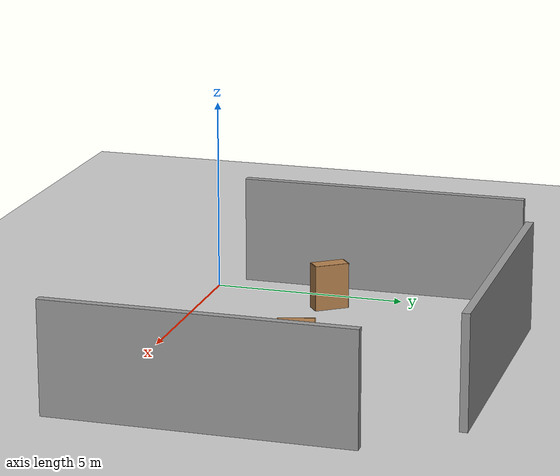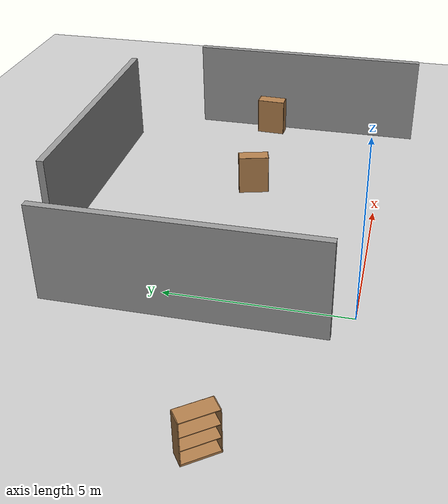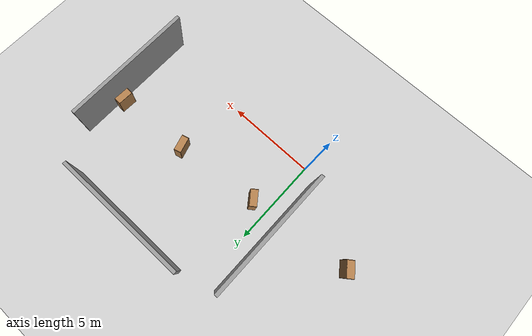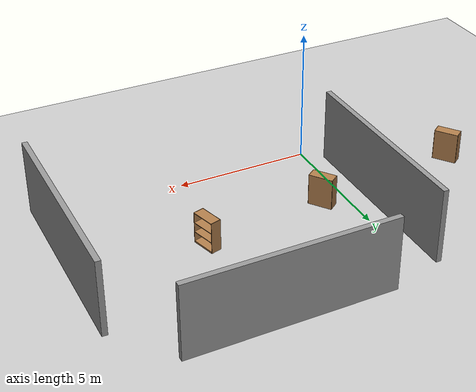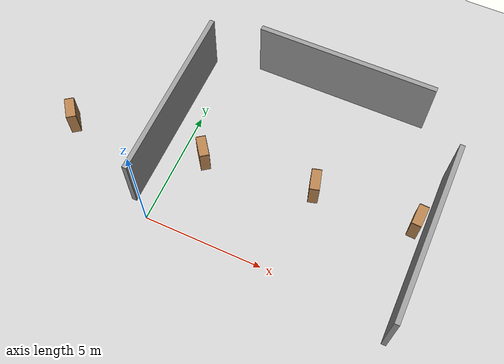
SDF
<sdf version="1.6">
 <world name="default">
  <model name="ground_plane">
   <static>1</static>
   <link name="link">
    <collision name="collision">
     <geometry><plane><normal>0 0 1</normal><size>100 100</size></plane></geometry>
     <surface><friction><ode><mu>100</mu><mu2>50</mu2></ode></friction></surface>
    </collision>
    <visual name="visual">
     <cast_shadows>0</cast_shadows>
     <geometry><plane><normal>0 0 1</normal><size>100 100</size></plane></geometry>
     <material>
      <script><uri>file://media/materials/scripts/gazebo.material</uri><name>Gazebo/Grey</name></script>
     </material>
    </visual>
   </link>
  </model>
  <model name="grey_wall_clone">
   <static>1</static>
   <link name="link">
    <pose>0 0 1.4 0 -0 0</pose>
    <collision name="collision"><geometry><box><size>7.5 0.2 2.8</size></box></geometry></collision>
    <visual name="visual">
     <cast_shadows>0</cast_shadows>
     <geometry><box><size>7.5 0.2 2.8</size></box></geometry>
     <material>
      <script>
       <uri>model://grey_wall/materials/scripts</uri>
       <uri>model://grey_wall/materials/textures</uri>
       <name>vrc/grey_wall</name>
      </script>
     </material>
    </visual>
   </link>
   <pose>-0.806001 4.27388 0 0 -0 1.57079</pose>
  </model>
  <model name="bookshelf">
   <static>1</static>
   <link name="link">
    <inertial><mass>1</mass></inertial>
    <collision name="back">
     <pose>0 0.005 0.6 0 -0 0</pose>
     <geometry><box><size>0.9 0.01 1.2</size></box></geometry>
    </collision>
    <visual name="visual1">
     <pose>0 0.005 0.6 0 -0 0</pose>
     <geometry><box><size>0.9 0.01 1.2</size></box></geometry>
     <material>
      <script><uri>file://media/materials/scripts/gazebo.material</uri><name>Gazebo/Wood</name></script>
     </material>
    </visual>
    <collision name="left_side">
     <pose>0.45 -0.195 0.6 0 -0 0</pose>
     <geometry><box><size>0.02 0.4 1.2</size></box></geometry>
    </collision>
    <visual name="visual2">
     <pose>0.45 -0.195 0.6 0 -0 0</pose>
     <geometry><box><size>0.02 0.4 1.2</size></box></geometry>
     <material>
      <script><uri>file://media/materials/scripts/gazebo.material</uri><name>Gazebo/Wood</name></script>
     </material>
    </visual>
    <collision name="right_side">
     <pose>-0.45 -0.195 0.6 0 -0 0</pose>
     <geometry><box><size>0.02 0.4 1.2</size></box></geometry>
    </collision>
    <visual name="visual3">
     <pose>-0.45 -0.195 0.6 0 -0 0</pose>
     <geometry><box><size>0.02 0.4 1.2</size></box></geometry>
     <material>
      <script><uri>file://media/materials/scripts/gazebo.material</uri><name>Gazebo/Wood</name></script>
     </material>
    </visual>
    <collision name="bottom">
     <pose>0 -0.195 0.03 0 -0 0</pose>
     <geometry><box><size>0.88 0.4 0.06</size></box></geometry>
    </collision>
    <visual name="visual4">
     <pose>0 -0.195 0.03 0 -0 0</pose>
     <geometry><box><size>0.88 0.4 0.06</size></box></geometry>
     <material>
      <script><uri>file://media/materials/scripts/gazebo.material</uri><name>Gazebo/Wood</name></script>
     </material>
    </visual>
    <collision name="top">
     <pose>0 -0.195 1.19 0 -0 0</pose>
     <geometry><box><size>0.88 0.4 0.02</size></box></geometry>
    </collision>
    <visual name="visual5">
     <pose>0 -0.195 1.19 0 -0 0</pose>
     <geometry><box><size>0.88 0.4 0.02</size></box></geometry>
     <material>
      <script><uri>file://media/materials/scripts/gazebo.material</uri><name>Gazebo/Wood</name></script>
     </material>
    </visual>
    <collision name="low_shelf">
     <pose>0 -0.195 0.43 0 -0 0</pose>
     <geometry><box><size>0.88 0.4 0.02</size></box></geometry>
    </collision>
    <visual name="visual6">
     <pose>0 -0.195 0.43 0 -0 0</pose>
     <geometry><box><size>0.88 0.4 0.02</size></box></geometry>
     <material>
      <script><uri>file://media/materials/scripts/gazebo.material</uri><name>Gazebo/Wood</name></script>
     </material>
    </visual>
    <collision name="high_shelf">
     <pose>0 -0.195 0.8 0 -0 0</pose>
     <geometry><box><size>0.88 0.4 0.02</size></box></geometry>
    </collision>
    <visual name="visual7">
     <pose>0 -0.195 0.8 0 -0 0</pose>
     <geometry><box><size>0.88 0.4 0.02</size></box></geometry>
     <material>
      <script><uri>file://media/materials/scripts/gazebo.material</uri><name>Gazebo/Wood</name></script>
     </material>
    </visual>
   </link>
   <pose>1.10765 3.42622 0 0 0 -0.93681</pose>
  </model>
  <model name="bookshelf_0">
   <static>1</static>
   <link name="link">
    <inertial><mass>1</mass></inertial>
    <collision name="back">
     <pose>0 0.005 0.6 0 -0 0</pose>
     <geometry><box><size>0.9 0.01 1.2</size></box></geometry>
    </collision>
    <visual name="visual1">
     <pose>0 0.005 0.6 0 -0 0</pose>
     <geometry><box><size>0.9 0.01 1.2</size></box></geometry>
     <material>
      <script><uri>file://media/materials/scripts/gazebo.material</uri><name>Gazebo/Wood</name></script>
     </material>
    </visual>
    <collision name="left_side">
     <pose>0.45 -0.195 0.6 0 -0 0</pose>
     <geometry><box><size>0.02 0.4 1.2</size></box></geometry>
    </collision>
    <visual name="visual2">
     <pose>0.45 -0.195 0.6 0 -0 0</pose>
     <geometry><box><size>0.02 0.4 1.2</size></box></geometry>
     <material>
      <script><uri>file://media/materials/scripts/gazebo.material</uri><name>Gazebo/Wood</name></script>
     </material>
    </visual>
    <collision name="right_side">
     <pose>-0.45 -0.195 0.6 0 -0 0</pose>
     <geometry><box><size>0.02 0.4 1.2</size></box></geometry>
    </collision>
    <visual name="visual3">
     <pose>-0.45 -0.195 0.6 0 -0 0</pose>
     <geometry><box><size>0.02 0.4 1.2</size></box></geometry>
     <material>
      <script><uri>file://media/materials/scripts/gazebo.material</uri><name>Gazebo/Wood</name></script>
     </material>
    </visual>
    <collision name="bottom">
     <pose>0 -0.195 0.03 0 -0 0</pose>
     <geometry><box><size>0.88 0.4 0.06</size></box></geometry>
    </collision>
    <visual name="visual4">
     <pose>0 -0.195 0.03 0 -0 0</pose>
     <geometry><box><size>0.88 0.4 0.06</size></box></geometry>
     <material>
      <script><uri>file://media/materials/scripts/gazebo.material</uri><name>Gazebo/Wood</name></script>
     </material>
    </visual>
    <collision name="top">
     <pose>0 -0.195 1.19 0 -0 0</pose>
     <geometry><box><size>0.88 0.4 0.02</size></box></geometry>
    </collision>
    <visual name="visual5">
     <pose>0 -0.195 1.19 0 -0 0</pose>
     <geometry><box><size>0.88 0.4 0.02</size></box></geometry>
     <material>
      <script><uri>file://media/materials/scripts/gazebo.material</uri><name>Gazebo/Wood</name></script>
     </material>
    </visual>
    <collision name="low_shelf">
     <pose>0 -0.195 0.43 0 -0 0</pose>
     <geometry><box><size>0.88 0.4 0.02</size></box></geometry>
    </collision>
    <visual name="visual6">
     <pose>0 -0.195 0.43 0 -0 0</pose>
     <geometry><box><size>0.88 0.4 0.02</size></box></geometry>
     <material>
      <script><uri>file://media/materials/scripts/gazebo.material</uri><name>Gazebo/Wood</name></script>
     </material>
    </visual>
    <collision name="high_shelf">
     <pose>0 -0.195 0.8 0 -0 0</pose>
     <geometry><box><size>0.88 0.4 0.02</size></box></geometry>
    </collision>
    <visual name="visual7">
     <pose>0 -0.195 0.8 0 -0 0</pose>
     <geometry><box><size>0.88 0.4 0.02</size></box></geometry>
     <material>
      <script><uri>file://media/materials/scripts/gazebo.material</uri><name>Gazebo/Wood</name></script>
     </material>
    </visual>
   </link>
   <pose>5.46343 3.75427 0 0 -0 1.84088</pose>
  </model>
  <model name="bookshelf_2">
   <static>1</static>
   <link name="link">
    <inertial><mass>1</mass></inertial>
    <collision name="back">
     <pose>0 0.005 0.6 0 -0 0</pose>
     <geometry><box><size>0.9 0.01 1.2</size></box></geometry>
    </collision>
    <visual name="visual1">
     <pose>0 0.005 0.6 0 -0 0</pose>
     <geometry><box><size>0.9 0.01 1.2</size></box></geometry>
     <material>
      <script><uri>file://media/materials/scripts/gazebo.material</uri><name>Gazebo/Wood</name></script>
     </material>
    </visual>
    <collision name="left_side">
     <pose>0.45 -0.195 0.6 0 -0 0</pose>
     <geometry><box><size>0.02 0.4 1.2</size></box></geometry>
    </collision>
    <visual name="visual2">
     <pose>0.45 -0.195 0.6 0 -0 0</pose>
     <geometry><box><size>0.02 0.4 1.2</size></box></geometry>
     <material>
      <script><uri>file://media/materials/scripts/gazebo.material</uri><name>Gazebo/Wood</name></script>
     </material>
    </visual>
    <collision name="right_side">
     <pose>-0.45 -0.195 0.6 0 -0 0</pose>
     <geometry><box><size>0.02 0.4 1.2</size></box></geometry>
    </collision>
    <visual name="visual3">
     <pose>-0.45 -0.195 0.6 0 -0 0</pose>
     <geometry><box><size>0.02 0.4 1.2</size></box></geometry>
     <material>
      <script><uri>file://media/materials/scripts/gazebo.material</uri><name>Gazebo/Wood</name></script>
     </material>
    </visual>
    <collision name="bottom">
     <pose>0 -0.195 0.03 0 -0 0</pose>
     <geometry><box><size>0.88 0.4 0.06</size></box></geometry>
    </collision>
    <visual name="visual4">
     <pose>0 -0.195 0.03 0 -0 0</pose>
     <geometry><box><size>0.88 0.4 0.06</size></box></geometry>
     <material>
      <script><uri>file://media/materials/scripts/gazebo.material</uri><name>Gazebo/Wood</name></script>
     </material>
    </visual>
    <collision name="top">
     <pose>0 -0.195 1.19 0 -0 0</pose>
     <geometry><box><size>0.88 0.4 0.02</size></box></geometry>
    </collision>
    <visual name="visual5">
     <pose>0 -0.195 1.19 0 -0 0</pose>
     <geometry><box><size>0.88 0.4 0.02</size></box></geometry>
     <material>
      <script><uri>file://media/materials/scripts/gazebo.material</uri><name>Gazebo/Wood</name></script>
     </material>
    </visual>
    <collision name="low_shelf">
     <pose>0 -0.195 0.43 0 -0 0</pose>
     <geometry><box><size>0.88 0.4 0.02</size></box></geometry>
    </collision>
    <visual name="visual6">
     <pose>0 -0.195 0.43 0 -0 0</pose>
     <geometry><box><size>0.88 0.4 0.02</size></box></geometry>
     <material>
      <script><uri>file://media/materials/scripts/gazebo.material</uri><name>Gazebo/Wood</name></script>
     </material>
    </visual>
    <collision name="high_shelf">
     <pose>0 -0.195 0.8 0 -0 0</pose>
     <geometry><box><size>0.88 0.4 0.02</size></box></geometry>
    </collision>
    <visual name="visual7">
     <pose>0 -0.195 0.8 0 -0 0</pose>
     <geometry><box><size>0.88 0.4 0.02</size></box></geometry>
     <material>
      <script><uri>file://media/materials/scripts/gazebo.material</uri><name>Gazebo/Wood</name></script>
     </material>
    </visual>
   </link>
   <pose>9.67631 4.04873 0 0 -0 1.52729</pose>
  </model>
  <model name="bookshelf_clone">
   <static>1</static>
   <link name="link">
    <inertial><mass>1</mass></inertial>
    <collision name="back">
     <pose>0 0.005 0.6 0 -0 0</pose>
     <geometry><box><size>0.9 0.01 1.2</size></box></geometry>
    </collision>
    <visual name="visual1">
     <pose>0 0.005 0.6 0 -0 0</pose>
     <geometry><box><size>0.9 0.01 1.2</size></box></geometry>
     <material>
      <script><uri>file://media/materials/scripts/gazebo.material</uri><name>Gazebo/Wood</name></script>
     </material>
    </visual>
    <collision name="left_side">
     <pose>0.45 -0.195 0.6 0 -0 0</pose>
     <geometry><box><size>0.02 0.4 1.2</size></box></geometry>
    </collision>
    <visual name="visual2">
     <pose>0.45 -0.195 0.6 0 -0 0</pose>
     <geometry><box><size>0.02 0.4 1.2</size></box></geometry>
     <material>
      <script><uri>file://media/materials/scripts/gazebo.material</uri><name>Gazebo/Wood</name></script>
     </material>
    </visual>
    <collision name="right_side">
     <pose>-0.45 -0.195 0.6 0 -0 0</pose>
     <geometry><box><size>0.02 0.4 1.2</size></box></geometry>
    </collision>
    <visual name="visual3">
     <pose>-0.45 -0.195 0.6 0 -0 0</pose>
     <geometry><box><size>0.02 0.4 1.2</size></box></geometry>
     <material>
      <script><uri>file://media/materials/scripts/gazebo.material</uri><name>Gazebo/Wood</name></script>
     </material>
    </visual>
    <collision name="bottom">
     <pose>0 -0.195 0.03 0 -0 0</pose>
     <geometry><box><size>0.88 0.4 0.06</size></box></geometry>
    </collision>
    <visual name="visual4">
     <pose>0 -0.195 0.03 0 -0 0</pose>
     <geometry><box><size>0.88 0.4 0.06</size></box></geometry>
     <material>
      <script><uri>file://media/materials/scripts/gazebo.material</uri><name>Gazebo/Wood</name></script>
     </material>
    </visual>
    <collision name="top">
     <pose>0 -0.195 1.19 0 -0 0</pose>
     <geometry><box><size>0.88 0.4 0.02</size></box></geometry>
    </collision>
    <visual name="visual5">
     <pose>0 -0.195 1.19 0 -0 0</pose>
     <geometry><box><size>0.88 0.4 0.02</size></box></geometry>
     <material>
      <script><uri>file://media/materials/scripts/gazebo.material</uri><name>Gazebo/Wood</name></script>
     </material>
    </visual>
    <collision name="low_shelf">
     <pose>0 -0.195 0.43 0 -0 0</pose>
     <geometry><box><size>0.88 0.4 0.02</size></box></geometry>
    </collision>
    <visual name="visual6">
     <pose>0 -0.195 0.43 0 -0 0</pose>
     <geometry><box><size>0.88 0.4 0.02</size></box></geometry>
     <material>
      <script><uri>file://media/materials/scripts/gazebo.material</uri><name>Gazebo/Wood</name></script>
     </material>
    </visual>
    <collision name="high_shelf">
     <pose>0 -0.195 0.8 0 -0 0</pose>
     <geometry><box><size>0.88 0.4 0.02</size></box></geometry>
    </collision>
    <visual name="visual7">
     <pose>0 -0.195 0.8 0 -0 0</pose>
     <geometry><box><size>0.88 0.4 0.02</size></box></geometry>
     <material>
      <script><uri>file://media/materials/scripts/gazebo.material</uri><name>Gazebo/Wood</name></script>
     </material>
    </visual>
   </link>
   <pose>-4.66454 2.79404 0 0 0 -0.93681</pose>
  </model>
  <model name="grey_wall_clone_0_clone">
   <static>1</static>
   <link name="link">
    <pose>0 0 1.4 0 -0 0</pose>
    <collision name="collision"><geometry><box><size>7.5 0.2 2.8</size></box></geometry></collision>
    <visual name="visual">
     <cast_shadows>0</cast_shadows>
     <geometry><box><size>7.5 0.2 2.8</size></box></geometry>
     <material>
      <script>
       <uri>model://grey_wall/materials/scripts</uri>
       <uri>model://grey_wall/materials/textures</uri>
       <name>vrc/grey_wall</name>
      </script>
     </material>
    </visual>
   </link>
   <pose>10.3218 2.8788 0 0 -0 1.57079</pose>
  </model>
  <model name="grey_wall_clone_0_clone_0_clone">
   <static>1</static>
   <link name="link">
    <pose>0 0 1.4 0 -0 0</pose>
    <collision name="collision"><geometry><box><size>7.5 0.2 2.8</size></box></geometry></collision>
    <visual name="visual">
     <cast_shadows>0</cast_shadows>
     <geometry><box><size>7.5 0.2 2.8</size></box></geometry>
     <material>
      <script>
       <uri>model://grey_wall/materials/scripts</uri>
       <uri>model://grey_wall/materials/textures</uri>
       <name>vrc/grey_wall</name>
      </script>
     </material>
    </visual>
   </link>
   <pose>4.94526 8.57888 0 0 0 -3.13595</pose>
  </model>
 </world>
</sdf>
